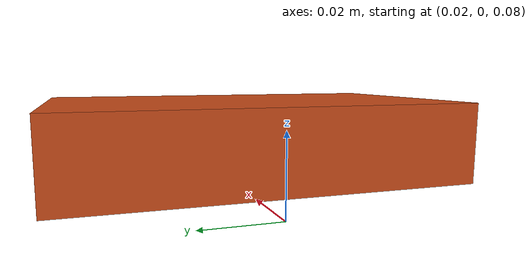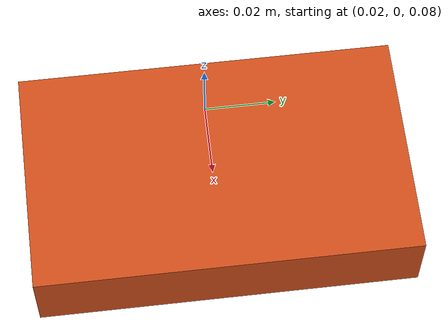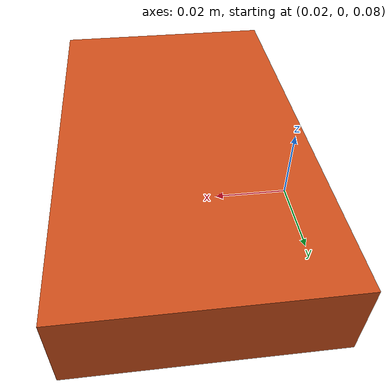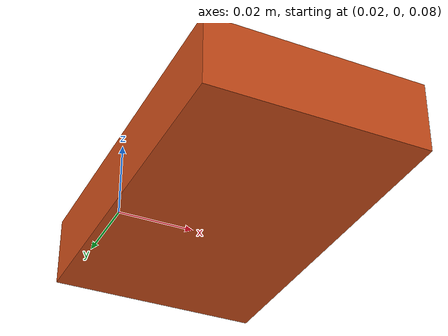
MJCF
<mujoco>
  <!-- Box (like cracker box: 6x10x2 cm) -->
  <worldbody>
    <body name="object" pos="0.05 0 0.095">
      <freejoint name="object_joint"/>
      <inertial pos="0 0 0" mass="0.15" diaginertia="2e-4 1.2e-4 1e-4"/>
      <geom name="object_geom" type="box" size="0.03 0.05 0.01"
            rgba="0.8 0.3 0.1 1" contype="1" conaffinity="1"
            friction="1 0.5 0.01"/>
    </body>
  </worldbody>
</mujoco>
